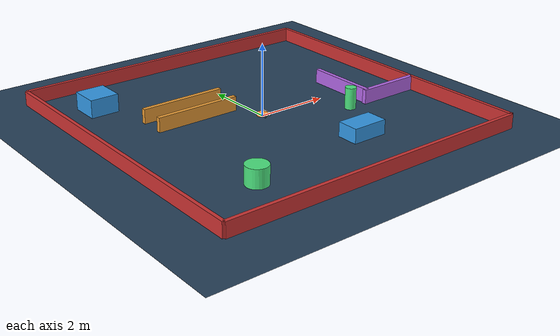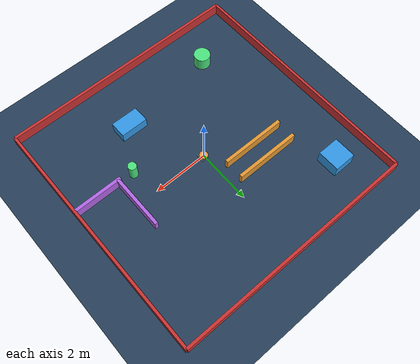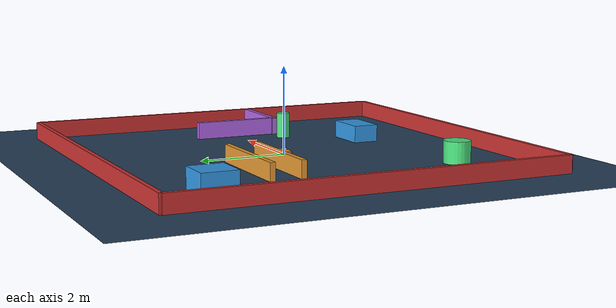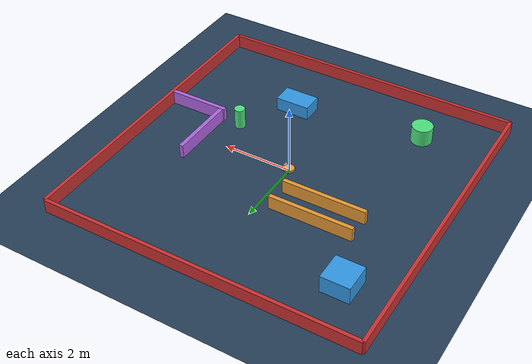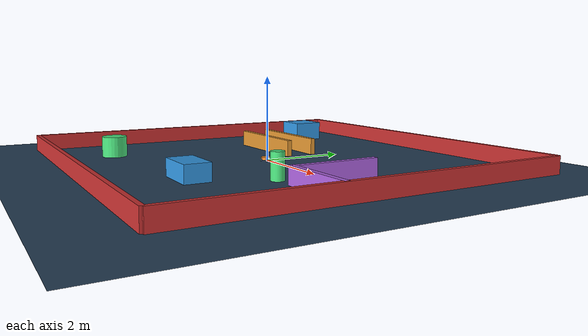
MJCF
<mujoco>
  <compiler autolimits="true"/>

  <asset>
    <texture name="grid" type="2d" builtin="checker" width="512" height="512"
             rgb1=".1 .2 .3" rgb2=".2 .3 .4"/>
    <material name="grid" texture="grid" texrepeat="4 4" texuniform="true" reflectance=".2"/>
    <mesh name="chasis" scale=".01 .006 .0015"
      vertex=" 9   2   0
              -10  10  10
               9  -2   0
               10  3  -10
               10 -3  -10
              -8   10 -10
              -10 -10  10
              -8  -10 -10
              -5   0   20"/>
  </asset>

  <default>
    <!-- wheel joints: low damping so motors can drive freely -->
    <joint damping=".008" actuatorfrcrange="-4 4"/>
    <default class="wheel">
      <geom type="cylinder" size=".03 .01" rgba=".5 .5 1 1"/>
    </default>
    <default class="decor">
      <site type="box" rgba=".5 1 .5 1"/>
    </default>
  </default>

  <worldbody>
    <!-- 10x10 m ground plane, centred at (0,0) -->
    <geom name="floor" type="plane" size="6 6 .01" material="grid" pos="0 0 0"/>

    <!-- ────────────────── Robot ────────────────── -->
    <!-- NOTE: no 'margin' on any robot geom – keeps the robot off the floor cleanly -->
    <body name="pusher1" pos="0 0 .03">
      <freejoint/>

      <!-- main disc body -->
      <geom name="base"
            type="cylinder"
            pos="0 0 0.03"
            size="0.15 0.03"
            rgba="1.0 0.6 0.2 1"/>

      <!-- front indicator (white box) -->
      <geom type="box" pos="0.16 0 0.03" size="0.01 0.14 0.05" rgba="1 1 1 1"/>

      <!-- passive front caster (condim=1 → frictionless roll) -->
      <geom name="front wheel" pos="0.12 0 -.015"
            type="sphere" size=".015" condim="1" priority="1"/>

      <body name="left wheel" pos="-.02 .16 0" zaxis="0 1 0">
        <joint name="left"/>
        <geom class="wheel"/>
        <site class="decor" size=".006 .025 .012"/>
        <site class="decor" size=".025 .006 .012"/>
      </body>

      <body name="right wheel" pos="-.02 -.16 0" zaxis="0 1 0">
        <joint name="right"/>
        <geom class="wheel"/>
        <site class="decor" size=".006 .025 .012"/>
        <site class="decor" size=".025 .006 .012"/>
      </body>
    </body>

    <!-- ────────────────── Obstacles ────────────────── -->
    <!-- 四周围墙 (±4.5 m) -->
    <geom name="ob_wall_north"  type="box" pos=" 0.0  4.5 0.2" size="4.5 0.05 0.2" rgba=".8 .2 .2 1"/>
    <geom name="ob_wall_south"  type="box" pos=" 0.0 -4.5 0.2" size="4.5 0.05 0.2" rgba=".8 .2 .2 1"/>
    <geom name="ob_wall_west"   type="box" pos="-4.5  0.0 0.2" size="0.05 4.5 0.2" rgba=".8 .2 .2 1"/>
    <geom name="ob_wall_east"   type="box" pos=" 4.5  0.0 0.2" size="0.05 4.5 0.2" rgba=".8 .2 .2 1"/>

    <!-- 走廊（两条平行长条墙） -->
    <geom name="ob_corridor_1"  type="box" pos="-1.5  1.5 0.2" size="1.2 0.06 0.2" rgba=".9 .6 .2 1"/>
    <geom name="ob_corridor_2"  type="box" pos="-1.5  0.8 0.2" size="1.2 0.06 0.2" rgba=".9 .6 .2 1"/>

    <!-- 方块障碍 -->
    <geom name="ob_box_1"       type="box" pos="-3.2  3.0 0.25" size="0.4 0.4 0.25" rgba=".2 .6 .9 1"/>
    <geom name="ob_box_2"       type="box" pos=" 1.2 -2.5 0.20" size="0.5 0.3 0.20" rgba=".2 .6 .9 1"/>

    <!-- 圆柱障碍/立柱 -->
    <geom name="ob_cyl_1"       type="cylinder" pos="-2.5 -3.0 0.25" size="0.30 0.25" rgba=".3 .9 .5 1"/>
    <geom name="ob_pillar"      type="cylinder" pos=" 2.2 -1.0 0.30" size="0.15 0.30" rgba=".3 .9 .5 1"/>

    <!-- L 形转角 -->
    <geom name="ob_L_1"         type="box" pos=" 2.8  0.0 0.2" size="0.06 1.0 0.2" rgba=".7 .4 .9 1"/>
    <geom name="ob_L_2"         type="box" pos=" 3.6 -1.0 0.2" size="0.9 0.06 0.2" rgba=".7 .4 .9 1"/>
  </worldbody>

  <!-- differential-drive tendon coupling -->
  <tendon>
    <fixed name="forward">
      <joint joint="left"  coef=".5"/>
      <joint joint="right" coef=".5"/>
    </fixed>
    <fixed name="turn">
      <joint joint="left"  coef="-.5"/>
      <joint joint="right" coef=".5"/>
    </fixed>
  </tendon>

  <actuator>
    <motor name="forward" tendon="forward" ctrlrange="-2 2"/>
    <motor name="turn"    tendon="turn"    ctrlrange="-2 2"/>
  </actuator>

  <sensor>
    <jointactuatorfrc name="right" joint="right"/>
    <jointactuatorfrc name="left"  joint="left"/>
  </sensor>
</mujoco>
